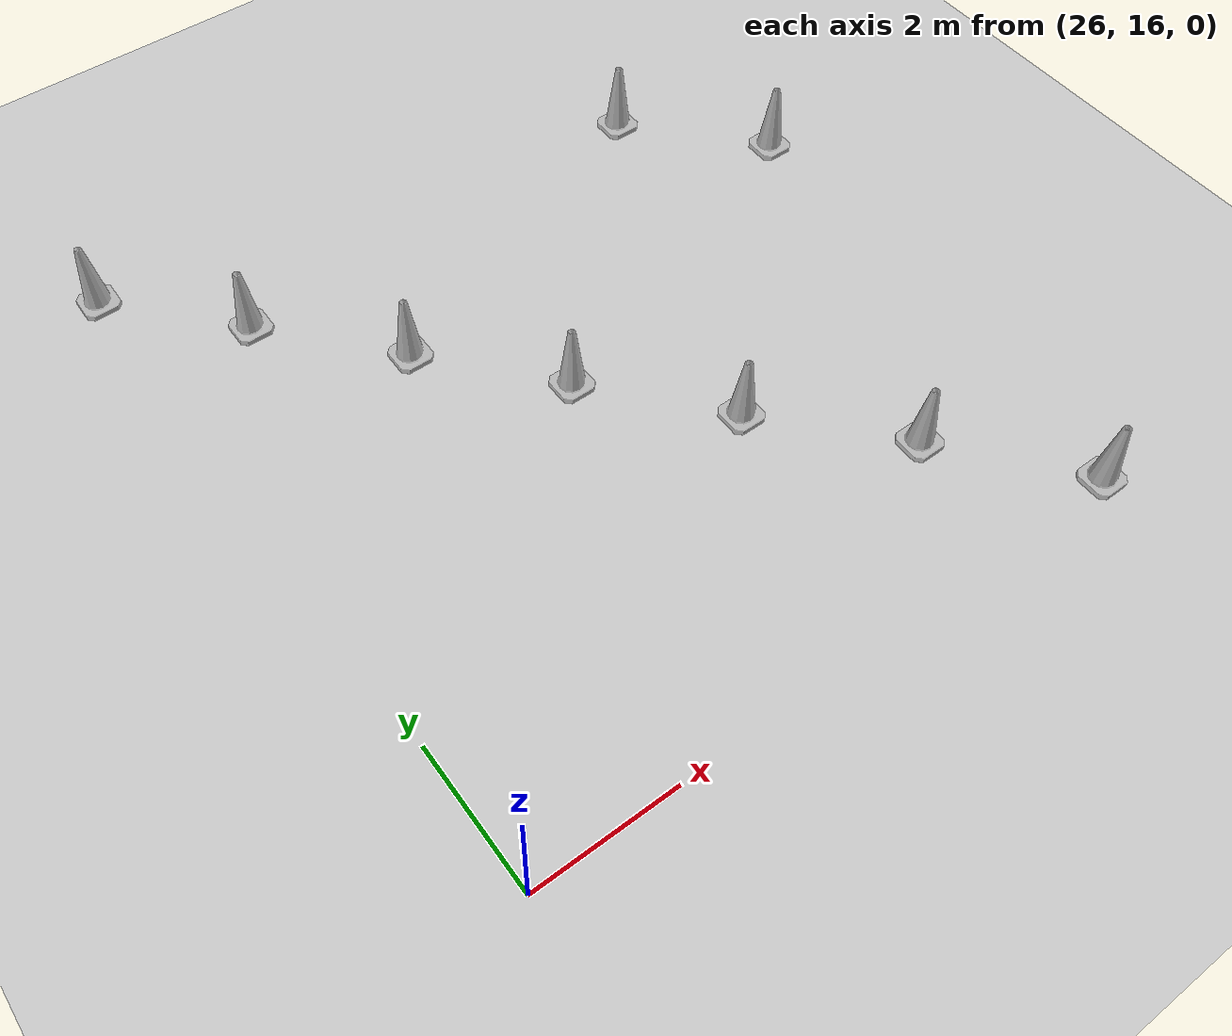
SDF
<sdf version="1.7">
 <world name="default">
  <model name="ground_plane">
   <static>1</static>
   <link name="link">
    <collision name="collision">
     <geometry><plane><normal>0 0 1</normal><size>125 125</size></plane></geometry>
     <surface>
      <contact><collide_bitmask>65535</collide_bitmask></contact>
      <friction><ode><mu>100</mu><mu2>50</mu2></ode></friction>
     </surface>
    </collision>
    <visual name="visual">
     <cast_shadows>0</cast_shadows>
     <geometry><plane><normal>0 0 1</normal><size>125 125</size></plane></geometry>
     <material>
      <script><uri>file://media/materials/scripts/gazebo.material</uri><name>Gazebo/Grey</name></script>
     </material>
    </visual>
   </link>
  </model>
  <model name="Construction Cone 60">
   <link name="link">
    <collision name="collision">
     <geometry>
      <mesh><scale>10 10 10</scale><uri>model://construction_cone/meshes/construction_cone.dae</uri></mesh>
     </geometry>
    </collision>
    <visual name="visual">
     <geometry>
      <mesh><scale>10 10 10</scale><uri>model://construction_cone/meshes/construction_cone.dae</uri></mesh>
     </geometry>
    </visual>
    <inertial>
     <inertia><ixx>1</ixx><ixy>0</ixy><ixz>0</ixz><iyy>1</iyy><iyz>0</iyz><izz>1</izz></inertia>
     <mass>1</mass>
    </inertial>
   </link>
   <pose>25.862248381191264 25.96285582765605 0 0 0 0</pose>
  </model>
  <model name="Construction Cone 66">
   <link name="link">
    <collision name="collision">
     <geometry>
      <mesh><scale>10 10 10</scale><uri>model://construction_cone/meshes/construction_cone.dae</uri></mesh>
     </geometry>
    </collision>
    <visual name="visual">
     <geometry>
      <mesh><scale>10 10 10</scale><uri>model://construction_cone/meshes/construction_cone.dae</uri></mesh>
     </geometry>
    </visual>
    <inertial>
     <inertia><ixx>1</ixx><ixy>0</ixy><ixz>0</ixz><iyy>1</iyy><iyz>0</iyz><izz>1</izz></inertia>
     <mass>1</mass>
    </inertial>
   </link>
   <pose>33.66974838119127 24.63535582765605 0 0 0 0</pose>
  </model>
  <model name="Construction Cone 67">
   <link name="link">
    <collision name="collision">
     <geometry>
      <mesh><scale>10 10 10</scale><uri>model://construction_cone/meshes/construction_cone.dae</uri></mesh>
     </geometry>
    </collision>
    <visual name="visual">
     <geometry>
      <mesh><scale>10 10 10</scale><uri>model://construction_cone/meshes/construction_cone.dae</uri></mesh>
     </geometry>
    </visual>
    <inertial>
     <inertia><ixx>1</ixx><ixy>0</ixy><ixz>0</ixz><iyy>1</iyy><iyz>0</iyz><izz>1</izz></inertia>
     <mass>1</mass>
    </inertial>
   </link>
   <pose>27.324748381191256 24.36535582765605 0 0 0 0</pose>
  </model>
  <model name="Construction Cone 73">
   <link name="link">
    <collision name="collision">
     <geometry>
      <mesh><scale>10 10 10</scale><uri>model://construction_cone/meshes/construction_cone.dae</uri></mesh>
     </geometry>
    </collision>
    <visual name="visual">
     <geometry>
      <mesh><scale>10 10 10</scale><uri>model://construction_cone/meshes/construction_cone.dae</uri></mesh>
     </geometry>
    </visual>
    <inertial>
     <inertia><ixx>1</ixx><ixy>0</ixy><ixz>0</ixz><iyy>1</iyy><iyz>0</iyz><izz>1</izz></inertia>
     <mass>1</mass>
    </inertial>
   </link>
   <pose>35.222248381191264 22.94785582765605 0 0 0 0</pose>
  </model>
  <model name="Construction Cone 74">
   <link name="link">
    <collision name="collision">
     <geometry>
      <mesh><scale>10 10 10</scale><uri>model://construction_cone/meshes/construction_cone.dae</uri></mesh>
     </geometry>
    </collision>
    <visual name="visual">
     <geometry>
      <mesh><scale>10 10 10</scale><uri>model://construction_cone/meshes/construction_cone.dae</uri></mesh>
     </geometry>
    </visual>
    <inertial>
     <inertia><ixx>1</ixx><ixy>0</ixy><ixz>0</ixz><iyy>1</iyy><iyz>0</iyz><izz>1</izz></inertia>
     <mass>1</mass>
    </inertial>
   </link>
   <pose>28.796248381191262 22.704855827656047 0 0 0 0</pose>
  </model>
  <model name="Construction Cone 82">
   <link name="link">
    <collision name="collision">
     <geometry>
      <mesh><scale>10 10 10</scale><uri>model://construction_cone/meshes/construction_cone.dae</uri></mesh>
     </geometry>
    </collision>
    <visual name="visual">
     <geometry>
      <mesh><scale>10 10 10</scale><uri>model://construction_cone/meshes/construction_cone.dae</uri></mesh>
     </geometry>
    </visual>
    <inertial>
     <inertia><ixx>1</ixx><ixy>0</ixy><ixz>0</ixz><iyy>1</iyy><iyz>0</iyz><izz>1</izz></inertia>
     <mass>1</mass>
    </inertial>
   </link>
   <pose>30.22724838119126 21.05785582765605 0 0 0 0</pose>
  </model>
  <model name="Construction Cone 92">
   <link name="link">
    <collision name="collision">
     <geometry>
      <mesh><scale>10 10 10</scale><uri>model://construction_cone/meshes/construction_cone.dae</uri></mesh>
     </geometry>
    </collision>
    <visual name="visual">
     <geometry>
      <mesh><scale>10 10 10</scale><uri>model://construction_cone/meshes/construction_cone.dae</uri></mesh>
     </geometry>
    </visual>
    <inertial>
     <inertia><ixx>1</ixx><ixy>0</ixy><ixz>0</ixz><iyy>1</iyy><iyz>0</iyz><izz>1</izz></inertia>
     <mass>1</mass>
    </inertial>
   </link>
   <pose>31.685248381191258 19.38385582765605 0 0 0 0</pose>
  </model>
  <model name="Construction Cone 98">
   <link name="link">
    <collision name="collision">
     <geometry>
      <mesh><scale>10 10 10</scale><uri>model://construction_cone/meshes/construction_cone.dae</uri></mesh>
     </geometry>
    </collision>
    <visual name="visual">
     <geometry>
      <mesh><scale>10 10 10</scale><uri>model://construction_cone/meshes/construction_cone.dae</uri></mesh>
     </geometry>
    </visual>
    <inertial>
     <inertia><ixx>1</ixx><ixy>0</ixy><ixz>0</ixz><iyy>1</iyy><iyz>0</iyz><izz>1</izz></inertia>
     <mass>1</mass>
    </inertial>
   </link>
   <pose>33.22424838119127 17.73685582765605 0 0 0 0</pose>
  </model>
  <model name="Construction Cone 105">
   <link name="link">
    <collision name="collision">
     <geometry>
      <mesh><scale>10 10 10</scale><uri>model://construction_cone/meshes/construction_cone.dae</uri></mesh>
     </geometry>
    </collision>
    <visual name="visual">
     <geometry>
      <mesh><scale>10 10 10</scale><uri>model://construction_cone/meshes/construction_cone.dae</uri></mesh>
     </geometry>
    </visual>
    <inertial>
     <inertia><ixx>1</ixx><ixy>0</ixy><ixz>0</ixz><iyy>1</iyy><iyz>0</iyz><izz>1</izz></inertia>
     <mass>1</mass>
    </inertial>
   </link>
   <pose>34.65524838119126 16.00885582765605 0 0 0 0</pose>
  </model>
 </world>
</sdf>
